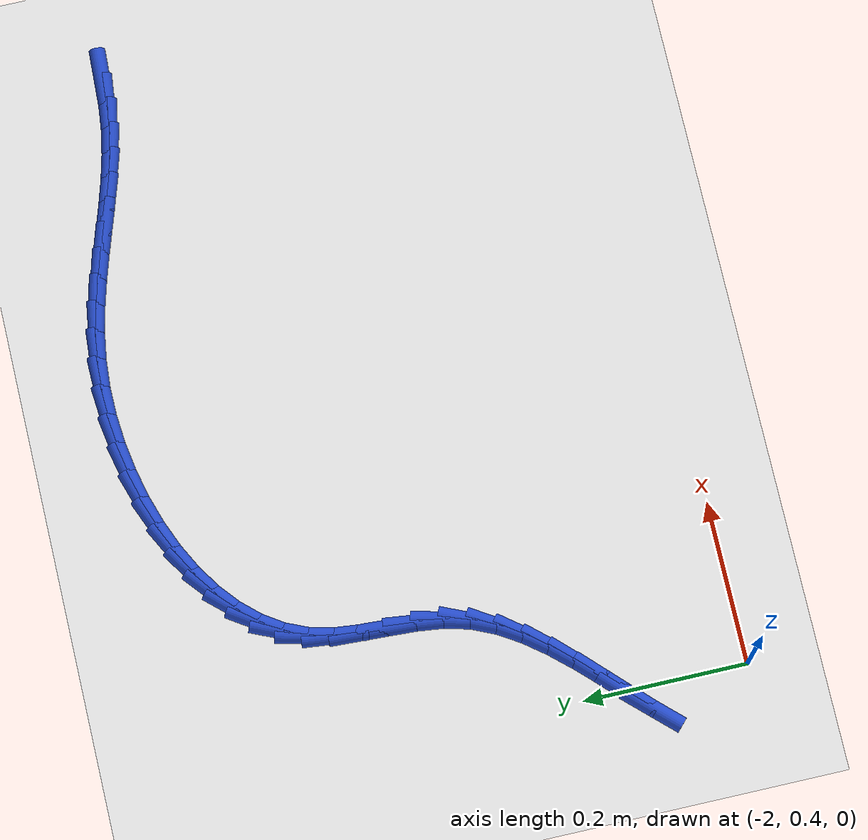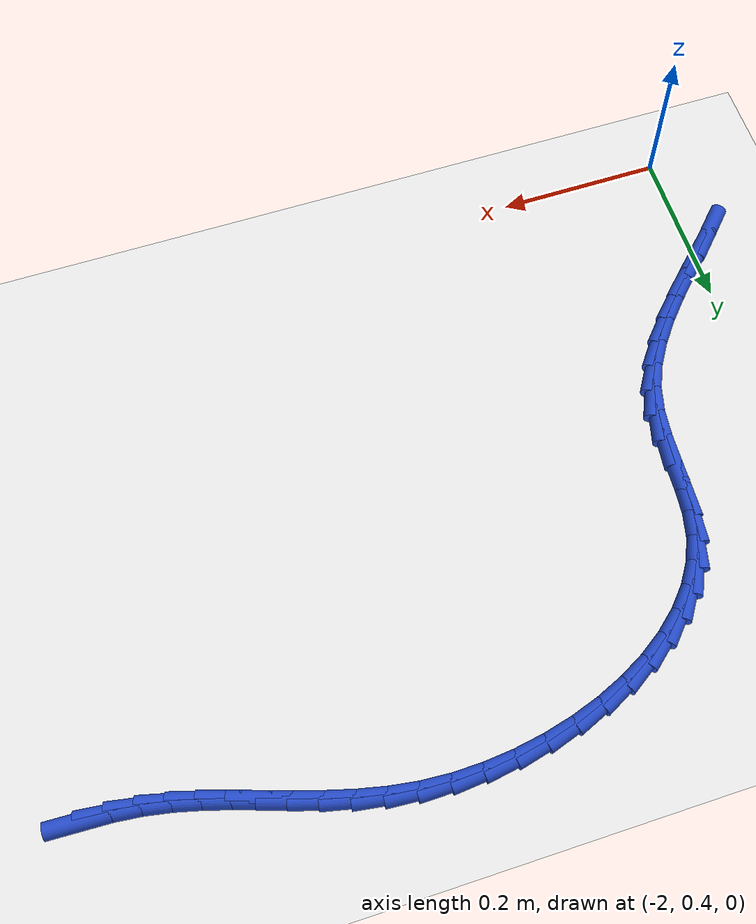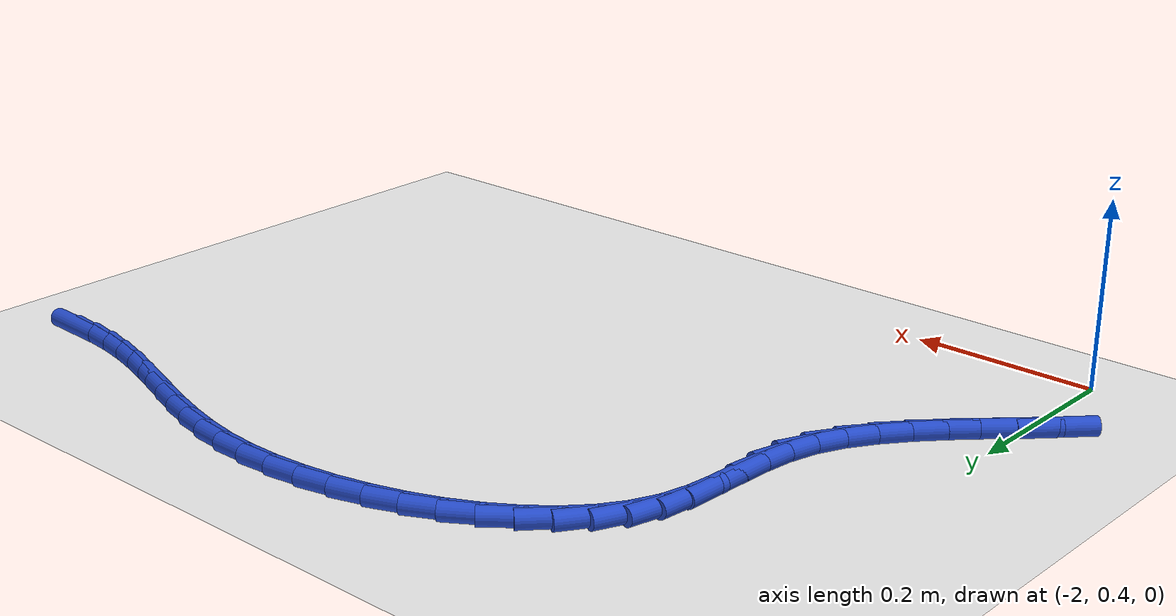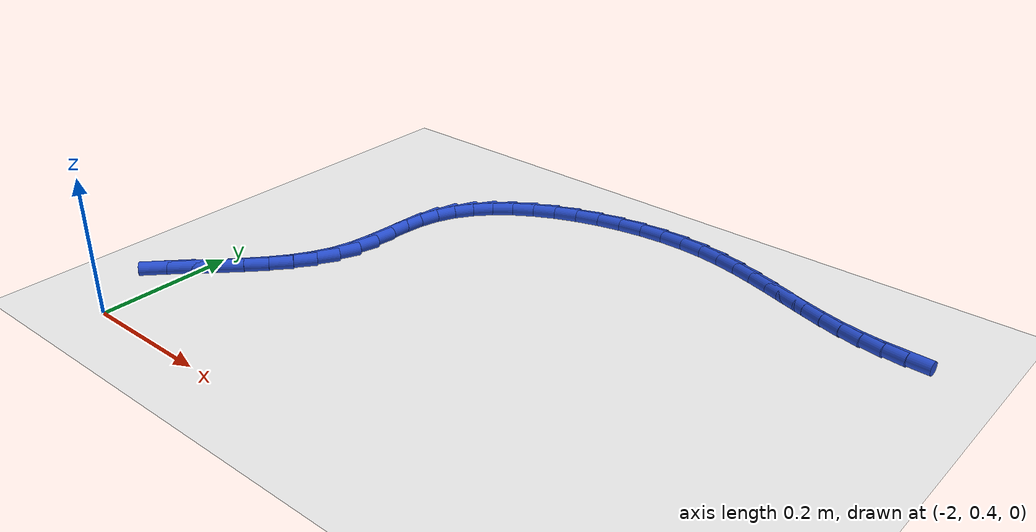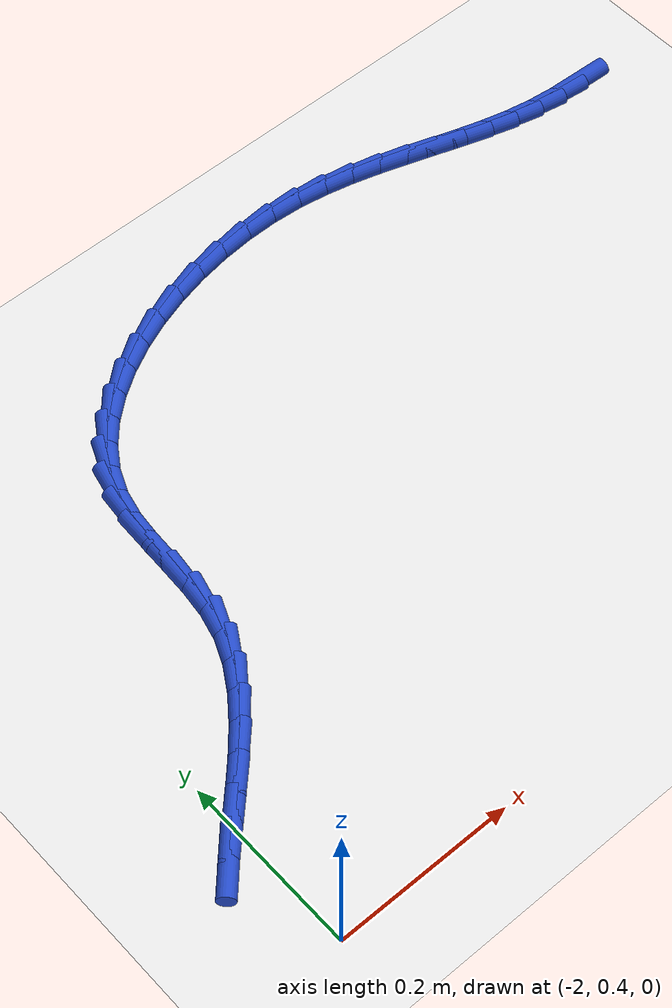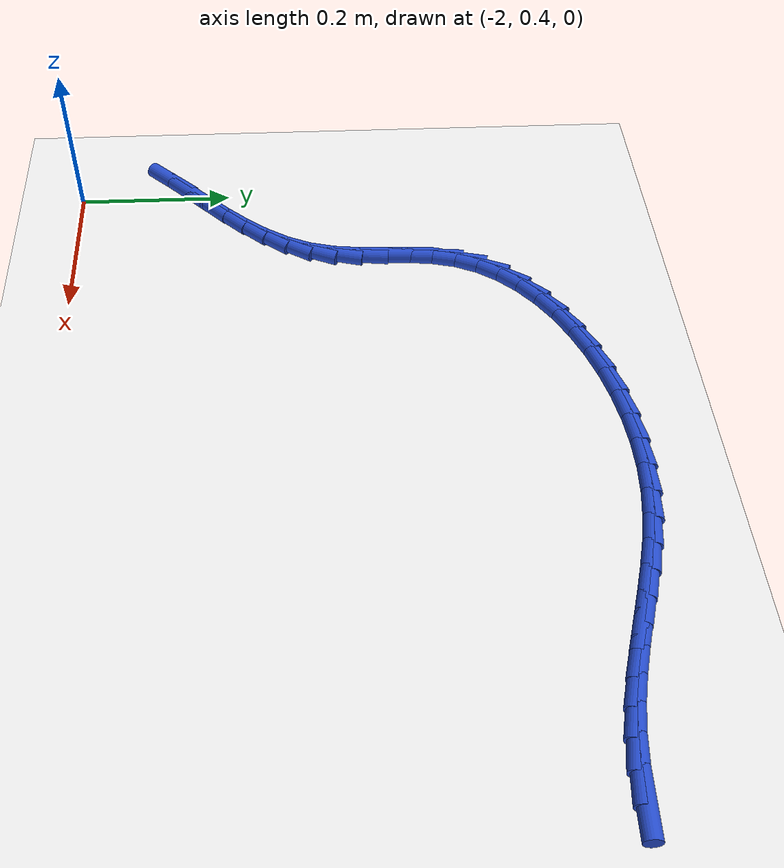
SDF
<sdf version="1.6">
 <world name="default">
  <model name="ground_plane">
   <static>1</static>
   <link name="link">
    <collision name="collision">
     <geometry><plane><normal>0 0 1</normal><size>100 100</size></plane></geometry>
     <surface><friction><ode><mu>100</mu><mu2>50</mu2></ode></friction></surface>
    </collision>
    <visual name="visual">
     <cast_shadows>0</cast_shadows>
     <geometry><plane><normal>0 0 1</normal><size>100 100</size></plane></geometry>
     <material>
      <script><uri>file://media/materials/scripts/gazebo.material</uri><name>Gazebo/WhiteGlow</name></script>
     </material>
    </visual>
   </link>
  </model>
  <model name="line">
   <link name="link_55">
    <pose>-1.1272023509425824 0.9942380904671126 0.01 0 1.57 -0.03994636514419881</pose>
    <collision name="collision">
     <geometry><cylinder><radius>0.01</radius><length>0.08</length></cylinder></geometry>
    </collision>
    <visual name="visual">
     <material>
      <script><name>Gazebo/Blue</name><uri>file://media/materials/scripts/gazebo.material</uri></script>
     </material>
     <geometry><cylinder><radius>0.01</radius><length>0.08</length></cylinder></geometry>
    </visual>
   </link>
   <link name="link_56">
    <pose>-1.159084270060073 0.9955123350976445 0.01 0 1.57 -0.10992279723840942</pose>
    <collision name="collision">
     <geometry><cylinder><radius>0.01</radius><length>0.08</length></cylinder></geometry>
    </collision>
    <visual name="visual">
     <material>
      <script><name>Gazebo/Blue</name><uri>file://media/materials/scripts/gazebo.material</uri></script>
     </material>
     <geometry><cylinder><radius>0.01</radius><length>0.08</length></cylinder></geometry>
    </visual>
   </link>
   <link name="link_57">
    <pose>-1.190489470495663 0.9989784542330741 0.01 0 1.57 -0.184534241785324</pose>
    <collision name="collision">
     <geometry><cylinder><radius>0.01</radius><length>0.08</length></cylinder></geometry>
    </collision>
    <visual name="visual">
     <material>
      <script><name>Gazebo/Blue</name><uri>file://media/materials/scripts/gazebo.material</uri></script>
     </material>
     <geometry><cylinder><radius>0.01</radius><length>0.08</length></cylinder></geometry>
    </visual>
   </link>
   <link name="link_58">
    <pose>-1.2213084531121094 1.004731058132297 0.01 0 1.57 -0.2476584669770083</pose>
    <collision name="collision">
     <geometry><cylinder><radius>0.01</radius><length>0.08</length></cylinder></geometry>
    </collision>
    <visual name="visual">
     <material>
      <script><name>Gazebo/Blue</name><uri>file://media/materials/scripts/gazebo.material</uri></script>
     </material>
     <geometry><cylinder><radius>0.01</radius><length>0.08</length></cylinder></geometry>
    </visual>
   </link>
   <link name="link_59">
    <pose>-1.2516620097746585 1.012405930871346 0.01 0 1.57 -0.29122634679704756</pose>
    <collision name="collision">
     <geometry><cylinder><radius>0.01</radius><length>0.08</length></cylinder></geometry>
    </collision>
    <visual name="visual">
     <material>
      <script><name>Gazebo/Blue</name><uri>file://media/materials/scripts/gazebo.material</uri></script>
     </material>
     <geometry><cylinder><radius>0.01</radius><length>0.08</length></cylinder></geometry>
    </visual>
   </link>
   <link name="link_60">
    <pose>-1.2817746728939043 1.0214321663910941 0.01 0 1.57 -0.31496000012980724</pose>
    <collision name="collision">
     <geometry><cylinder><radius>0.01</radius><length>0.08</length></cylinder></geometry>
    </collision>
    <visual name="visual">
     <material>
      <script><name>Gazebo/Blue</name><uri>file://media/materials/scripts/gazebo.material</uri></script>
     </material>
     <geometry><cylinder><radius>0.01</radius><length>0.08</length></cylinder></geometry>
    </visual>
   </link>
   <link name="link_61">
    <pose>-1.3118714755453014 1.031237861119946 0.01 0 1.57 -0.319112880362789</pose>
    <collision name="collision">
     <geometry><cylinder><radius>0.01</radius><length>0.08</length></cylinder></geometry>
    </collision>
    <visual name="visual">
     <material>
      <script><name>Gazebo/Blue</name><uri>file://media/materials/scripts/gazebo.material</uri></script>
     </material>
     <geometry><cylinder><radius>0.01</radius><length>0.08</length></cylinder></geometry>
    </visual>
   </link>
   <link name="link_62">
    <pose>-1.3421774508043023 1.0412511114863054 0.01 0 1.57 -0.3041467638296031</pose>
    <collision name="collision">
     <geometry><cylinder><radius>0.01</radius><length>0.08</length></cylinder></geometry>
    </collision>
    <visual name="visual">
     <material>
      <script><name>Gazebo/Blue</name><uri>file://media/materials/scripts/gazebo.material</uri></script>
     </material>
     <geometry><cylinder><radius>0.01</radius><length>0.08</length></cylinder></geometry>
    </visual>
   </link>
   <link name="link_63">
    <pose>-1.3729176317463616 1.050900013918577 0.01 0 1.57 -0.2706686063330813</pose>
    <collision name="collision">
     <geometry><cylinder><radius>0.01</radius><length>0.08</length></cylinder></geometry>
    </collision>
    <visual name="visual">
     <material>
      <script><name>Gazebo/Blue</name><uri>file://media/materials/scripts/gazebo.material</uri></script>
     </material>
     <geometry><cylinder><radius>0.01</radius><length>0.08</length></cylinder></geometry>
    </visual>
   </link>
   <link name="link_64">
    <pose>-1.404317051446933 1.0596126648451647 0.01 0 1.57 -0.21956439943451625</pose>
    <collision name="collision">
     <geometry><cylinder><radius>0.01</radius><length>0.08</length></cylinder></geometry>
    </collision>
    <visual name="visual">
     <material>
      <script><name>Gazebo/Blue</name><uri>file://media/materials/scripts/gazebo.material</uri></script>
     </material>
     <geometry><cylinder><radius>0.01</radius><length>0.08</length></cylinder></geometry>
    </visual>
   </link>
   <link name="link_65">
    <pose>-1.4366007429814707 1.0668171606944739 0.01 0 1.57 -0.1522705587111267</pose>
    <collision name="collision">
     <geometry><cylinder><radius>0.01</radius><length>0.08</length></cylinder></geometry>
    </collision>
    <visual name="visual">
     <material>
      <script><name>Gazebo/Blue</name><uri>file://media/materials/scripts/gazebo.material</uri></script>
     </material>
     <geometry><cylinder><radius>0.01</radius><length>0.08</length></cylinder></geometry>
    </visual>
   </link>
   <link name="link_66">
    <pose>-1.469993739425428 1.071941597894908 0.01 0 1.57 -0.07186552564823748</pose>
    <collision name="collision">
     <geometry><cylinder><radius>0.01</radius><length>0.08</length></cylinder></geometry>
    </collision>
    <visual name="visual">
     <material>
      <script><name>Gazebo/Blue</name><uri>file://media/materials/scripts/gazebo.material</uri></script>
     </material>
     <geometry><cylinder><radius>0.01</radius><length>0.08</length></cylinder></geometry>
    </visual>
   </link>
   <link name="link_67">
    <pose>-1.5046902370949278 1.0744393814818423 0.01 0 1.57 0.009241513793314183</pose>
    <collision name="collision">
     <geometry><cylinder><radius>0.01</radius><length>0.08</length></cylinder></geometry>
    </collision>
    <visual name="visual">
     <material>
      <script><name>Gazebo/Blue</name><uri>file://media/materials/scripts/gazebo.material</uri></script>
     </material>
     <geometry><cylinder><radius>0.01</radius><length>0.08</length></cylinder></geometry>
    </visual>
   </link>
   <link name="link_68">
    <pose>-1.5404642574492529 1.0741087659671056 0.01 0 1.57 0.08545857403335835</pose>
    <collision name="collision">
     <geometry><cylinder><radius>0.01</radius><length>0.08</length></cylinder></geometry>
    </collision>
    <visual name="visual">
     <material>
      <script><name>Gazebo/Blue</name><uri>file://media/materials/scripts/gazebo.material</uri></script>
     </material>
     <geometry><cylinder><radius>0.01</radius><length>0.08</length></cylinder></geometry>
    </visual>
   </link>
   <link name="link_69">
    <pose>-1.5767862422158772 1.070997162397883 0.01 0 1.57 0.15935996623190674</pose>
    <collision name="collision">
     <geometry><cylinder><radius>0.01</radius><length>0.08</length></cylinder></geometry>
    </collision>
    <visual name="visual">
     <material>
      <script><name>Gazebo/Blue</name><uri>file://media/materials/scripts/gazebo.material</uri></script>
     </material>
     <geometry><cylinder><radius>0.01</radius><length>0.08</length></cylinder></geometry>
    </visual>
   </link>
   <link name="link_70">
    <pose>-1.6131198903788633 1.0651575157829942 0.01 0 1.57 0.23344689845944122</pose>
    <collision name="collision">
     <geometry><cylinder><radius>0.01</radius><length>0.08</length></cylinder></geometry>
    </collision>
    <visual name="visual">
     <material>
      <script><name>Gazebo/Blue</name><uri>file://media/materials/scripts/gazebo.material</uri></script>
     </material>
     <geometry><cylinder><radius>0.01</radius><length>0.08</length></cylinder></geometry>
    </visual>
   </link>
   <link name="link_71">
    <pose>-1.6489289009222703 1.0566427711312594 0.01 0 1.57 0.31016010478622685</pose>
    <collision name="collision">
     <geometry><cylinder><radius>0.01</radius><length>0.08</length></cylinder></geometry>
    </collision>
    <visual name="visual">
     <material>
      <script><name>Gazebo/Blue</name><uri>file://media/materials/scripts/gazebo.material</uri></script>
     </material>
     <geometry><cylinder><radius>0.01</radius><length>0.08</length></cylinder></geometry>
    </visual>
   </link>
   <link name="link_72">
    <pose>-1.683676972830158 1.0455058734514966 0.01 0 1.57 0.39204443647027587</pose>
    <collision name="collision">
     <geometry><cylinder><radius>0.01</radius><length>0.08</length></cylinder></geometry>
    </collision>
    <visual name="visual">
     <material>
      <script><name>Gazebo/Blue</name><uri>file://media/materials/scripts/gazebo.material</uri></script>
     </material>
     <geometry><cylinder><radius>0.01</radius><length>0.08</length></cylinder></geometry>
    </visual>
   </link>
   <link name="link_73">
    <pose>-1.7168278050865848 1.031799767752526 0.01 0 1.57 0.4818860851438872</pose>
    <collision name="collision">
     <geometry><cylinder><radius>0.01</radius><length>0.08</length></cylinder></geometry>
    </collision>
    <visual name="visual">
     <material>
      <script><name>Gazebo/Blue</name><uri>file://media/materials/scripts/gazebo.material</uri></script>
     </material>
     <geometry><cylinder><radius>0.01</radius><length>0.08</length></cylinder></geometry>
    </visual>
   </link>
   <link name="link_74">
    <pose>-1.7478450966756134 1.0155773990431667 0.01 0 1.57 0.5827921264051895</pose>
    <collision name="collision">
     <geometry><cylinder><radius>0.01</radius><length>0.08</length></cylinder></geometry>
    </collision>
    <visual name="visual">
     <material>
      <script><name>Gazebo/Blue</name><uri>file://media/materials/scripts/gazebo.material</uri></script>
     </material>
     <geometry><cylinder><radius>0.01</radius><length>0.08</length></cylinder></geometry>
    </visual>
   </link>
   <link name="link_75">
    <pose>-1.7761925465813013 0.9968917123322384 0.01 0 1.57 0.6981316564373208</pose>
    <collision name="collision">
     <geometry><cylinder><radius>0.01</radius><length>0.08</length></cylinder></geometry>
    </collision>
    <visual name="visual">
     <material>
      <script><name>Gazebo/Blue</name><uri>file://media/materials/scripts/gazebo.material</uri></script>
     </material>
     <geometry><cylinder><radius>0.01</radius><length>0.08</length></cylinder></geometry>
    </visual>
   </link>
   <link name="link_76">
    <pose>-1.8013338537877095 0.9757956526285598 0.01 0 1.57 0.8311747790692148</pose>
    <collision name="collision">
     <geometry><cylinder><radius>0.01</radius><length>0.08</length></cylinder></geometry>
    </collision>
    <visual name="visual">
     <material>
      <script><name>Gazebo/Blue</name><uri>file://media/materials/scripts/gazebo.material</uri></script>
     </material>
     <geometry><cylinder><radius>0.01</radius><length>0.08</length></cylinder></geometry>
    </visual>
   </link>
   <link name="link_77">
    <pose>-1.8227327172788974 0.9523421649409513 0.01 0 1.57 0.9841889268612973</pose>
    <collision name="collision">
     <geometry><cylinder><radius>0.01</radius><length>0.08</length></cylinder></geometry>
    </collision>
    <visual name="visual">
     <material>
      <script><name>Gazebo/Blue</name><uri>file://media/materials/scripts/gazebo.material</uri></script>
     </material>
     <geometry><cylinder><radius>0.01</radius><length>0.08</length></cylinder></geometry>
    </visual>
   </link>
   <link name="link_78">
    <pose>-1.8398528360389255 0.9265841942782311 0.01 0 1.57 1.1568612248879726</pose>
    <collision name="collision">
     <geometry><cylinder><radius>0.01</radius><length>0.08</length></cylinder></geometry>
    </collision>
    <visual name="visual">
     <material>
      <script><name>Gazebo/Blue</name><uri>file://media/materials/scripts/gazebo.material</uri></script>
     </material>
     <geometry><cylinder><radius>0.01</radius><length>0.08</length></cylinder></geometry>
    </visual>
   </link>
   <link name="link_79">
    <pose>-1.8521579090518525 0.8985746856492195 0.01 0 1.57 1.3369116129227363</pose>
    <collision name="collision">
     <geometry><cylinder><radius>0.01</radius><length>0.08</length></cylinder></geometry>
    </collision>
    <visual name="visual">
     <material>
      <script><name>Gazebo/Blue</name><uri>file://media/materials/scripts/gazebo.material</uri></script>
     </material>
     <geometry><cylinder><radius>0.01</radius><length>0.08</length></cylinder></geometry>
    </visual>
   </link>
   <link name="link_80">
    <pose>-1.8593407197969352 0.8684258187754041 0.01 0 1.57 1.4652076813610788</pose>
    <collision name="collision">
     <geometry><cylinder><radius>0.01</radius><length>0.08</length></cylinder></geometry>
    </collision>
    <visual name="visual">
     <material>
      <script><name>Gazebo/Blue</name><uri>file://media/materials/scripts/gazebo.material</uri></script>
     </material>
     <geometry><cylinder><radius>0.01</radius><length>0.08</length></cylinder></geometry>
    </visual>
   </link>
   <link name="link_81">
    <pose>-1.8627066358659474 0.8366667416086104 0.01 0 1.57 1.5234721078060718</pose>
    <collision name="collision">
     <geometry><cylinder><radius>0.01</radius><length>0.08</length></cylinder></geometry>
    </collision>
    <visual name="visual">
     <material>
      <script><name>Gazebo/Blue</name><uri>file://media/materials/scripts/gazebo.material</uri></script>
     </material>
     <geometry><cylinder><radius>0.01</radius><length>0.08</length></cylinder></geometry>
    </visual>
   </link>
   <link name="link_82">
    <pose>-1.8642534517176315 0.8040056439274523 0.01 0 1.57 1.5182434397776188</pose>
    <collision name="collision">
     <geometry><cylinder><radius>0.01</radius><length>0.08</length></cylinder></geometry>
    </collision>
    <visual name="visual">
     <material>
      <script><name>Gazebo/Blue</name><uri>file://media/materials/scripts/gazebo.material</uri></script>
     </material>
     <geometry><cylinder><radius>0.01</radius><length>0.08</length></cylinder></geometry>
    </visual>
   </link>
   <link name="link_83">
    <pose>-1.8659816280831578 0.7711514049325019 0.01 0 1.57 1.4504719564458037</pose>
    <collision name="collision">
     <geometry><cylinder><radius>0.01</radius><length>0.08</length></cylinder></geometry>
    </collision>
    <visual name="visual">
     <material>
      <script><name>Gazebo/Blue</name><uri>file://media/materials/scripts/gazebo.material</uri></script>
     </material>
     <geometry><cylinder><radius>0.01</radius><length>0.08</length></cylinder></geometry>
    </visual>
   </link>
   <link name="link_84">
    <pose>-1.8698916256936957 0.7388129038243316 0.01 0 1.57 1.3167858905066796</pose>
    <collision name="collision">
     <geometry><cylinder><radius>0.01</radius><length>0.08</length></cylinder></geometry>
    </collision>
    <visual name="visual">
     <material>
      <script><name>Gazebo/Blue</name><uri>file://media/materials/scripts/gazebo.material</uri></script>
     </material>
     <geometry><cylinder><radius>0.01</radius><length>0.08</length></cylinder></geometry>
    </visual>
   </link>
   <link name="link_85">
    <pose>-1.8779704639258141 0.7076947578269789 0.01 0 1.57 1.1503256623963651</pose>
    <collision name="collision">
     <geometry><cylinder><radius>0.01</radius><length>0.08</length></cylinder></geometry>
    </collision>
    <visual name="visual">
     <material>
      <script><name>Gazebo/Blue</name><uri>file://media/materials/scripts/gazebo.material</uri></script>
     </material>
     <geometry><cylinder><radius>0.01</radius><length>0.08</length></cylinder></geometry>
    </visual>
   </link>
   <link name="link_86">
    <pose>-1.8911705087235102 0.67817351688399 0.01 0 1.57 1.01326042450643</pose>
    <collision name="collision">
     <geometry><cylinder><radius>0.01</radius><length>0.08</length></cylinder></geometry>
    </collision>
    <visual name="visual">
     <material>
      <script><name>Gazebo/Blue</name><uri>file://media/materials/scripts/gazebo.material</uri></script>
     </material>
     <geometry><cylinder><radius>0.01</radius><length>0.08</length></cylinder></geometry>
    </visual>
   </link>
   <link name="link_87">
    <pose>-1.9086933108034663 0.6500705835125444 0.01 0 1.57 0.9110845794762623</pose>
    <collision name="collision">
     <geometry><cylinder><radius>0.01</radius><length>0.08</length></cylinder></geometry>
    </collision>
    <visual name="visual">
     <material>
      <script><name>Gazebo/Blue</name><uri>file://media/materials/scripts/gazebo.material</uri></script>
     </material>
     <geometry><cylinder><radius>0.01</radius><length>0.08</length></cylinder></geometry>
    </visual>
   </link>
   <link name="link_88">
    <pose>-1.92957120309729 0.6231537047575537 0.01 0 1.57 0.8401443329232958</pose>
    <collision name="collision">
     <geometry><cylinder><radius>0.01</radius><length>0.08</length></cylinder></geometry>
    </collision>
    <visual name="visual">
     <material>
      <script><name>Gazebo/Blue</name><uri>file://media/materials/scripts/gazebo.material</uri></script>
     </material>
     <geometry><cylinder><radius>0.01</radius><length>0.08</length></cylinder></geometry>
    </visual>
   </link>
   <link name="link_89">
    <pose>-1.952836518536589 0.5971906276639274 0.01 0 1.57 0.796543200959309</pose>
    <collision name="collision">
     <geometry><cylinder><radius>0.01</radius><length>0.08</length></cylinder></geometry>
    </collision>
    <visual name="visual">
     <material>
      <script><name>Gazebo/Blue</name><uri>file://media/materials/scripts/gazebo.material</uri></script>
     </material>
     <geometry><cylinder><radius>0.01</radius><length>0.08</length></cylinder></geometry>
    </visual>
   </link>
   <link name="link_90">
    <pose>-1.977521590052971 0.5719490992765768 0.01 0 1.57 0.7776826907002639</pose>
    <collision name="collision">
     <geometry><cylinder><radius>0.01</radius><length>0.08</length></cylinder></geometry>
    </collision>
    <visual name="visual">
     <material>
      <script><name>Gazebo/Blue</name><uri>file://media/materials/scripts/gazebo.material</uri></script>
     </material>
     <geometry><cylinder><radius>0.01</radius><length>0.08</length></cylinder></geometry>
    </visual>
   </link>
   <link name="link_91">
    <pose>-2.0026587505780435 0.5471968666404116 0.01 0 1.57 0.782824860218433</pose>
    <collision name="collision">
     <geometry><cylinder><radius>0.01</radius><length>0.08</length></cylinder></geometry>
    </collision>
    <visual name="visual">
     <material>
      <script><name>Gazebo/Blue</name><uri>file://media/materials/scripts/gazebo.material</uri></script>
     </material>
     <geometry><cylinder><radius>0.01</radius><length>0.08</length></cylinder></geometry>
    </visual>
   </link>
   <link name="link_92">
    <pose>-2.027280333043415 0.522701676800343 0.01 0 1.57 0.8133702395284186</pose>
    <collision name="collision">
     <geometry><cylinder><radius>0.01</radius><length>0.08</length></cylinder></geometry>
    </collision>
    <visual name="visual">
     <material>
      <script><name>Gazebo/Blue</name><uri>file://media/materials/scripts/gazebo.material</uri></script>
     </material>
     <geometry><cylinder><radius>0.01</radius><length>0.08</length></cylinder></geometry>
    </visual>
   </link>
  </model>
 </world>
</sdf>
